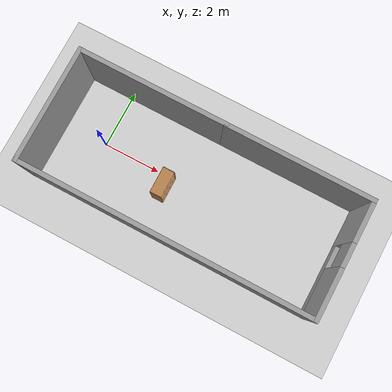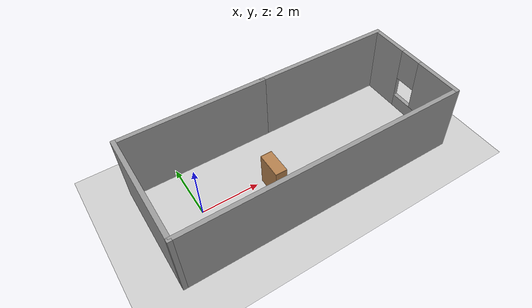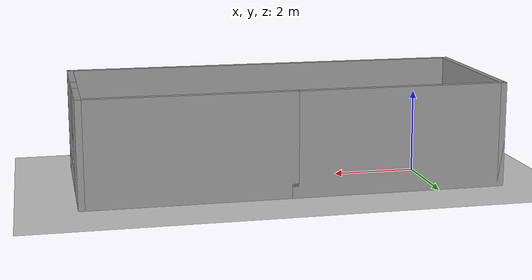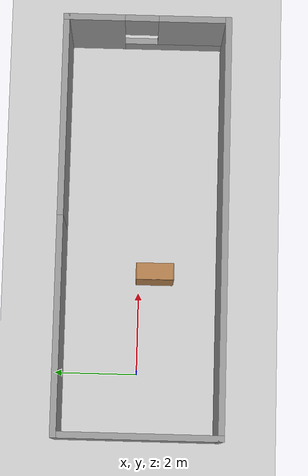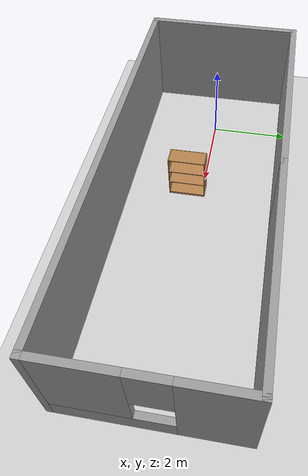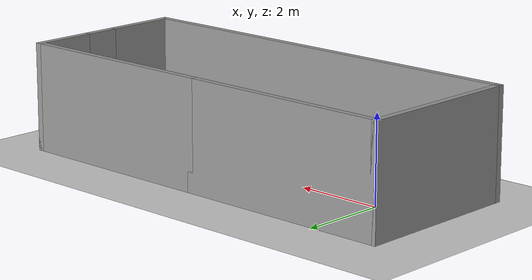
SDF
<sdf version="1.6">
 <world name="default">
  <light name="sun" type="directional">
   <pose>0 0 10 0 -0 0</pose>
   <diffuse>0.8 0.8 0.8 1</diffuse>
   <specular>0.2 0.2 0.2 1</specular>
   <attenuation>
    <range>1000</range>
    <constant>0.9</constant>
    <linear>0.01</linear>
    <quadratic>0.001</quadratic>
   </attenuation>
   <direction>-0.5 0.1 -0.9</direction>
  </light>
  <model name="ground_plane">
   <static>1</static>
   <link name="link">
    <collision name="collision">
     <geometry><plane><normal>0 0 1</normal><size>100 100</size></plane></geometry>
     <surface><friction><ode><mu>100</mu><mu2>50</mu2></ode></friction></surface>
    </collision>
    <visual name="visual">
     <cast_shadows>0</cast_shadows>
     <geometry><plane><normal>0 0 1</normal><size>100 100</size></plane></geometry>
     <material>
      <script><uri>file://media/materials/scripts/gazebo.material</uri><name>Gazebo/Grey</name></script>
     </material>
    </visual>
   </link>
  </model>
  <gravity>0 0 -9.8</gravity>
  <magnetic_field>6e-06 2.3e-05 -4.2e-05</magnetic_field>
  <atmosphere type="adiabatic"/>
  <physics name="default_physics" default="0" type="ode">
   <max_step_size>0.001</max_step_size>
   <real_time_factor>1</real_time_factor>
   <real_time_update_rate>1000</real_time_update_rate>
  </physics>
  <scene><ambient>0.4 0.4 0.4 1</ambient><background>0.7 0.7 0.7 1</background><shadows>1</shadows></scene>
  <audio><device>default</device></audio>
  <spherical_coordinates>
   <surface_model>EARTH_WGS84</surface_model>
   <latitude_deg>0</latitude_deg>
   <longitude_deg>0</longitude_deg>
   <elevation>0</elevation>
   <heading_deg>0</heading_deg>
  </spherical_coordinates>
  <model name="Sample_1">
   <pose>3.37317 -0.05218 0 0 -0 0</pose>
   <link name="Wall_0">
    <collision name="Wall_0_Collision">
     <geometry><box><size>5 0.15 2.5</size></box></geometry>
     <pose>0 0 1.25 0 -0 0</pose>
    </collision>
    <visual name="Wall_0_Visual">
     <pose>0 0 1.25 0 -0 0</pose>
     <geometry><box><size>5 0.15 2.5</size></box></geometry>
     <material>
      <script><uri>file://media/materials/scripts/gazebo.material</uri><name>Gazebo/Grey</name></script>
      <ambient>1 1 1 1</ambient>
     </material>
     <meta><layer>0</layer></meta>
    </visual>
    <pose>2.5 1.925 0 0 -0 0</pose>
   </link>
   <link name="Wall_1">
    <pose>4.925 -0 0 0 -0 -1.5708</pose>
    <visual name="Wall_1_Visual_0">
     <pose>-1.2675 0 1.25 0 -0 0</pose>
     <geometry><box><size>1.465 0.15 2.5</size></box></geometry>
     <material>
      <script><uri>file://media/materials/scripts/gazebo.material</uri><name>Gazebo/Grey</name></script>
      <ambient>1 1 1 1</ambient>
     </material>
     <meta><layer>0</layer></meta>
    </visual>
    <collision name="Wall_1_Collision_0">
     <geometry><box><size>1.465 0.15 2.5</size></box></geometry>
     <pose>-1.2675 0 1.25 0 -0 0</pose>
    </collision>
    <visual name="Wall_1_Visual_1">
     <pose>0.7325 0 0.25 0 -0 0</pose>
     <geometry><box><size>2.535 0.15 0.5</size></box></geometry>
     <material>
      <script><uri>file://media/materials/scripts/gazebo.material</uri><name>Gazebo/Grey</name></script>
      <ambient>1 1 1 1</ambient>
     </material>
     <meta><layer>0</layer></meta>
    </visual>
    <collision name="Wall_1_Collision_1">
     <geometry><box><size>2.535 0.15 0.5</size></box></geometry>
     <pose>0.7325 0 0.25 0 -0 0</pose>
    </collision>
    <visual name="Wall_1_Visual_2">
     <pose>1.1325 0 1.5 0 -0 0</pose>
     <geometry><box><size>1.735 0.15 2</size></box></geometry>
     <material>
      <script><uri>file://media/materials/scripts/gazebo.material</uri><name>Gazebo/Grey</name></script>
      <ambient>1 1 1 1</ambient>
     </material>
     <meta><layer>0</layer></meta>
    </visual>
    <collision name="Wall_1_Collision_2">
     <geometry><box><size>1.735 0.15 2</size></box></geometry>
     <pose>1.1325 0 1.5 0 -0 0</pose>
    </collision>
    <visual name="Wall_1_Visual_3">
     <pose>-0.135 0 1.9 0 -0 0</pose>
     <geometry><box><size>0.8 0.15 1.2</size></box></geometry>
     <material>
      <script><uri>file://media/materials/scripts/gazebo.material</uri><name>Gazebo/Grey</name></script>
      <ambient>1 1 1 1</ambient>
     </material>
     <meta><layer>0</layer></meta>
    </visual>
    <collision name="Wall_1_Collision_3">
     <geometry><box><size>0.8 0.15 1.2</size></box></geometry>
     <pose>-0.135 0 1.9 0 -0 0</pose>
    </collision>
   </link>
   <link name="Wall_2">
    <collision name="Wall_2_Collision">
     <geometry><box><size>10 0.15 2.5</size></box></geometry>
     <pose>0 0 1.25 0 -0 0</pose>
    </collision>
    <visual name="Wall_2_Visual">
     <pose>0 0 1.25 0 -0 0</pose>
     <geometry><box><size>10 0.15 2.5</size></box></geometry>
     <material>
      <script><uri>file://media/materials/scripts/gazebo.material</uri><name>Gazebo/Grey</name></script>
      <ambient>1 1 1 1</ambient>
     </material>
     <meta><layer>0</layer></meta>
    </visual>
    <pose>-0 -1.925 0 0 -0 3.14159</pose>
   </link>
   <link name="Wall_3">
    <collision name="Wall_3_Collision">
     <geometry><box><size>4 0.15 2.5</size></box></geometry>
     <pose>0 0 1.25 0 -0 0</pose>
    </collision>
    <visual name="Wall_3_Visual">
     <pose>0 0 1.25 0 -0 0</pose>
     <geometry><box><size>4 0.15 2.5</size></box></geometry>
     <material>
      <script><uri>file://media/materials/scripts/gazebo.material</uri><name>Gazebo/Grey</name></script>
      <ambient>1 1 1 1</ambient>
     </material>
     <meta><layer>0</layer></meta>
    </visual>
    <pose>-4.925 -0 0 0 -0 1.5708</pose>
   </link>
   <link name="Wall_4">
    <collision name="Wall_4_Collision">
     <geometry><box><size>5.15 0.15 2.5</size></box></geometry>
     <pose>0 0 1.25 0 -0 0</pose>
    </collision>
    <visual name="Wall_4_Visual">
     <pose>0 0 1.25 0 -0 0</pose>
     <geometry><box><size>5.15 0.15 2.5</size></box></geometry>
     <material>
      <script><uri>file://media/materials/scripts/gazebo.material</uri><name>Gazebo/Grey</name></script>
      <ambient>1 1 1 1</ambient>
     </material>
     <meta><layer>0</layer></meta>
    </visual>
    <pose>-2.425 1.925 0 0 -0 0</pose>
   </link>
   <static>1</static>
  </model>
  <model name="bookshelf">
   <static>1</static>
   <link name="link">
    <inertial><mass>1</mass></inertial>
    <collision name="back">
     <pose>0 0.005 0.6 0 -0 0</pose>
     <geometry><box><size>0.9 0.01 1.2</size></box></geometry>
    </collision>
    <visual name="visual1">
     <pose>0 0.005 0.6 0 -0 0</pose>
     <geometry><box><size>0.9 0.01 1.2</size></box></geometry>
     <material>
      <script><uri>file://media/materials/scripts/gazebo.material</uri><name>Gazebo/Wood</name></script>
     </material>
    </visual>
    <collision name="left_side">
     <pose>0.45 -0.195 0.6 0 -0 0</pose>
     <geometry><box><size>0.02 0.4 1.2</size></box></geometry>
    </collision>
    <visual name="visual2">
     <pose>0.45 -0.195 0.6 0 -0 0</pose>
     <geometry><box><size>0.02 0.4 1.2</size></box></geometry>
     <material>
      <script><uri>file://media/materials/scripts/gazebo.material</uri><name>Gazebo/Wood</name></script>
     </material>
    </visual>
    <collision name="right_side">
     <pose>-0.45 -0.195 0.6 0 -0 0</pose>
     <geometry><box><size>0.02 0.4 1.2</size></box></geometry>
    </collision>
    <visual name="visual3">
     <pose>-0.45 -0.195 0.6 0 -0 0</pose>
     <geometry><box><size>0.02 0.4 1.2</size></box></geometry>
     <material>
      <script><uri>file://media/materials/scripts/gazebo.material</uri><name>Gazebo/Wood</name></script>
     </material>
    </visual>
    <collision name="bottom">
     <pose>0 -0.195 0.03 0 -0 0</pose>
     <geometry><box><size>0.88 0.4 0.06</size></box></geometry>
    </collision>
    <visual name="visual4">
     <pose>0 -0.195 0.03 0 -0 0</pose>
     <geometry><box><size>0.88 0.4 0.06</size></box></geometry>
     <material>
      <script><uri>file://media/materials/scripts/gazebo.material</uri><name>Gazebo/Wood</name></script>
     </material>
    </visual>
    <collision name="top">
     <pose>0 -0.195 1.19 0 -0 0</pose>
     <geometry><box><size>0.88 0.4 0.02</size></box></geometry>
    </collision>
    <visual name="visual5">
     <pose>0 -0.195 1.19 0 -0 0</pose>
     <geometry><box><size>0.88 0.4 0.02</size></box></geometry>
     <material>
      <script><uri>file://media/materials/scripts/gazebo.material</uri><name>Gazebo/Wood</name></script>
     </material>
    </visual>
    <collision name="low_shelf">
     <pose>0 -0.195 0.43 0 -0 0</pose>
     <geometry><box><size>0.88 0.4 0.02</size></box></geometry>
    </collision>
    <visual name="visual6">
     <pose>0 -0.195 0.43 0 -0 0</pose>
     <geometry><box><size>0.88 0.4 0.02</size></box></geometry>
     <material>
      <script><uri>file://media/materials/scripts/gazebo.material</uri><name>Gazebo/Wood</name></script>
     </material>
    </visual>
    <collision name="high_shelf">
     <pose>0 -0.195 0.8 0 -0 0</pose>
     <geometry><box><size>0.88 0.4 0.02</size></box></geometry>
    </collision>
    <visual name="visual7">
     <pose>0 -0.195 0.8 0 -0 0</pose>
     <geometry><box><size>0.88 0.4 0.02</size></box></geometry>
     <material>
      <script><uri>file://media/materials/scripts/gazebo.material</uri><name>Gazebo/Wood</name></script>
     </material>
    </visual>
   </link>
   <pose>2.22523 -0.385334 -0 0 -0 1.57241</pose>
  </model>
 </world>
</sdf>
